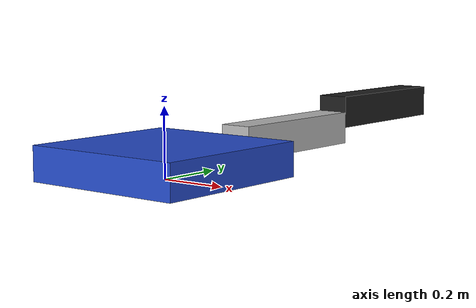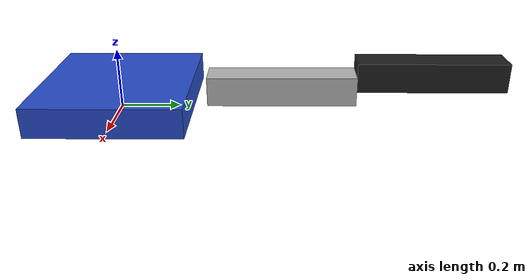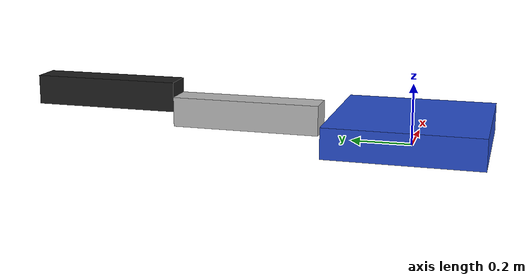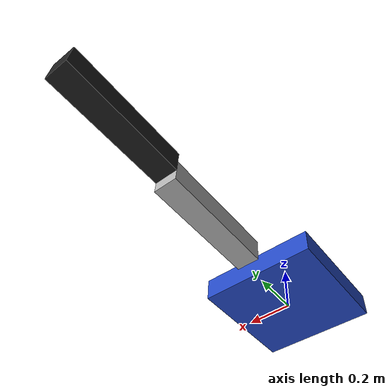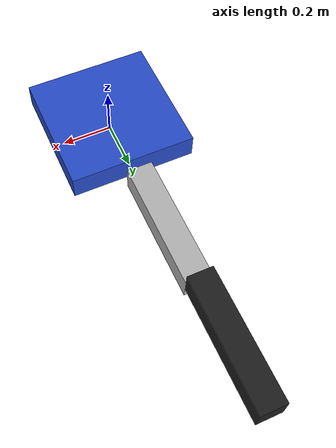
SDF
<sdf version='1.7'>
  <model name='pi_robot'>
    <link name='base_link'>
      <inertial>
        <pose>0 0 0.05 0 -0 0</pose>
        <mass>10</mass>
        <inertia>
          <ixx>0.4</ixx>
          <ixy>0</ixy>
          <ixz>0</ixz>
          <iyy>0.4</iyy>
          <iyz>0</iyz>
          <izz>0.2</izz>
        </inertia>
      </inertial>
      <collision name='base_link_collision'>
        <pose>0 0 0.05 0 -0 0</pose>
        <geometry>
          <box>
            <size>0.5 0.5 0.1</size>
          </box>
        </geometry>
        <surface>
          <contact>
            <ode/>
          </contact>
          <friction>
            <ode>
              <mu>0.02</mu>
              <mu2>0.02</mu2>
            </ode>
          </friction>
        </surface>
      </collision>
      <visual name='base_link_visual'>
        <pose>0 0 0.05 0 -0 0</pose>
        <geometry>
          <box>
            <size>0.5 0.5 0.1</size>
          </box>
        </geometry>
        <material>
          <script>
            <name>Gazebo/Blue</name>
            <uri>file://media/materials/scripts/gazebo.material</uri>
          </script>
        </material>
      </visual>
      <gravity>1</gravity>
      <velocity_decay/>
    </link>
    <joint name='leg1joint' type='revolute'>
      <pose relative_to='base_link'>0 0.3 0.07 0 -0 0</pose>
      <parent>base_link</parent>
      <child>leg1</child>
      <axis>
        <xyz>1 0 0</xyz>
        <limit>
          <lower>-0.3</lower>
          <upper>1.2</upper>
          <effort>1000</effort>
          <velocity>0.5</velocity>
        </limit>
        <dynamics>
          <damping>0.7</damping>
          <friction>0</friction>
          <spring_reference>0</spring_reference>
          <spring_stiffness>0</spring_stiffness>
        </dynamics>
      </axis>
    </joint>
    <link name='leg1'>
      <pose relative_to='leg1joint'>0 0 0 0 -0 0</pose>
      <inertial>
        <pose>0 0.25 0 0 -0 0</pose>
        <mass>0.2</mass>
        <inertia>
          <ixx>0.1</ixx>
          <ixy>0</ixy>
          <ixz>0</ixz>
          <iyy>0.1</iyy>
          <iyz>0</iyz>
          <izz>0.1</izz>
        </inertia>
      </inertial>
      <collision name='leg1_collision'>
        <pose>0 0.25 0 0 -0 0</pose>
        <geometry>
          <box>
            <size>0.1 0.5 0.1</size>
          </box>
        </geometry>
      </collision>
      <visual name='leg1_visual'>
        <pose>0 0.25 0 0 -0 0</pose>
        <geometry>
          <box>
            <size>0.1 0.5 0.1</size>
          </box>
        </geometry>
      </visual>
    </link>
    <joint name='leg2joint' type='revolute'>
      <pose relative_to='leg1'>0 0.5 0.05 0 -0 0</pose>
      <parent>leg1</parent>
      <child>leg2</child>
      <axis>
        <xyz>1 0 0</xyz>
        <limit>
          <lower>-1.8</lower>
          <upper>0.5</upper>
          <effort>1000</effort>
          <velocity>0.5</velocity>
        </limit>
        <dynamics>
          <damping>0.7</damping>
          <friction>0</friction>
          <spring_reference>0</spring_reference>
          <spring_stiffness>0</spring_stiffness>
        </dynamics>
      </axis>
    </joint>
    <link name='leg2'>
      <pose relative_to='leg2joint'>0 0 0 0 -0 0</pose>
      <inertial>
        <pose>0 0.25 0 0 -0 0</pose>
        <mass>0.2</mass>
        <inertia>
          <ixx>0.1</ixx>
          <ixy>0</ixy>
          <ixz>0</ixz>
          <iyy>0.1</iyy>
          <iyz>0</iyz>
          <izz>0.1</izz>
        </inertia>
      </inertial>
      <collision name='leg2_collision'>
        <pose>0 0.25 0 0 -0 0</pose>
        <geometry>
          <box>
            <size>0.1 0.5 0.1</size>
          </box>
        </geometry>
        <surface>
          <contact>
            <ode/>
          </contact>
          <friction>
            <ode>
              <mu>0.2</mu>
              <mu2>0.2</mu2>
            </ode>
          </friction>
        </surface>
      </collision>
      <visual name='leg2_visual'>
        <pose>0 0.25 0 0 -0 0</pose>
        <geometry>
          <box>
            <size>0.1 0.5 0.1</size>
          </box>
        </geometry>
        <material>
          <script>
            <name>Gazebo/Black</name>
            <uri>file://media/materials/scripts/gazebo.material</uri>
          </script>
        </material>
      </visual>
      <gravity>1</gravity>
      <velocity_decay/>
    </link>
  </model>
</sdf>
